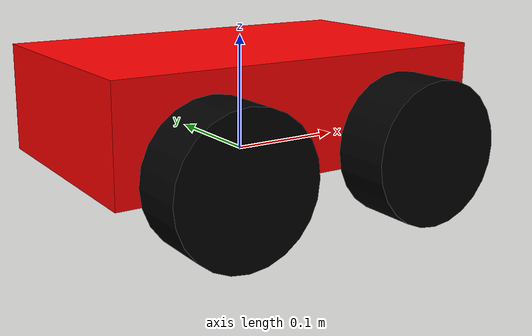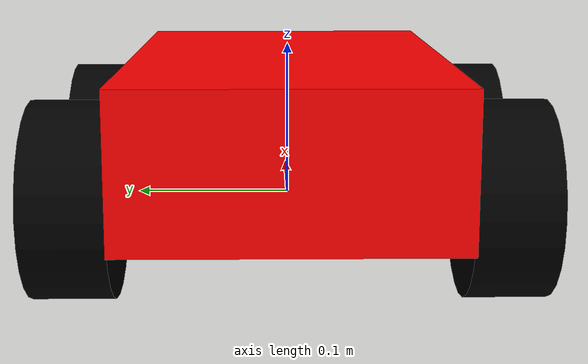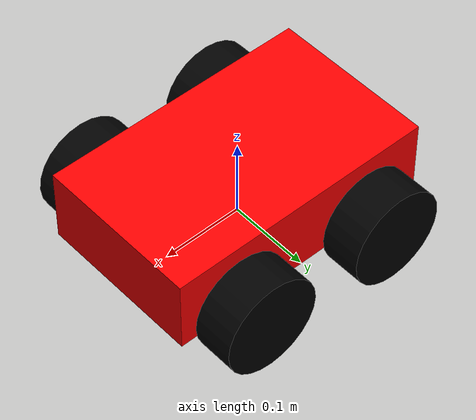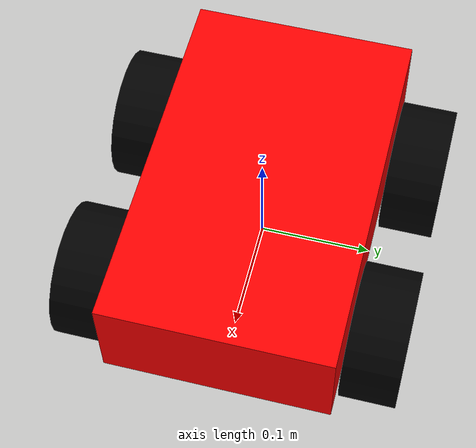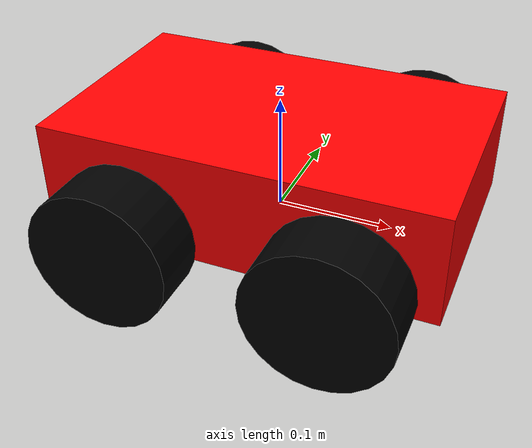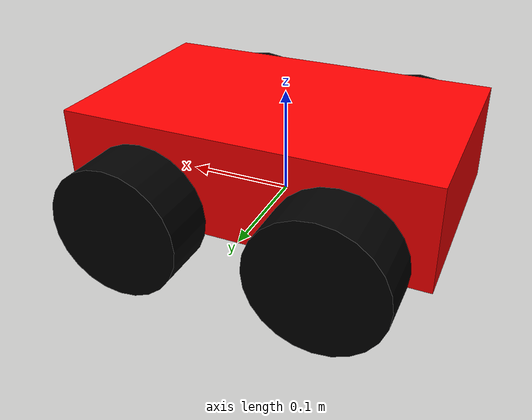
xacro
<?xml version="1.0"?>

<robot name="ares" xmlns:xacro="http://www.ros.org/wiki/xacro">

	<material name="red">
		<color rgba="1 0 0 1"/>
	</material>

	<material name="black">
		<color rgba="0 0 0 1"/>
	</material>

	<xacro:property name="chassisWidth" value="0.203" />
	<xacro:property name="chassisHeight" value="0.093" />
	<xacro:property name="chassisLength" value="0.333" />
	<xacro:property name="wheelRadius" value="0.06" />
	<xacro:property name="wheelWidth" value="0.05" />

	<link name="base_link">
		<visual>
			<geometry>
				<box size="${chassisLength} ${chassisWidth} ${chassisHeight}"/>
			</geometry>
			<origin rpy="0 0 0" xyz="0 0 ${chassisHeight/2}"/>
			<material name="red"/>
		</visual>
		<collision>
			<geometry>
				<box size="${chassisLength} ${chassisWidth} ${chassisHeight}"/>
			</geometry>
		</collision>
		<inertial>
			<mass value="10"/>
			<inertia ixx="0.11954" ixy="0.0" ixz="0.0" iyy="0.1521" iyz="0.0" izz="0.499"/>
		</inertial>
	</link>

	<gazebo reference="base_link">
    	<material>Gazebo/DarkGrey</material>
  	</gazebo>

	<link name="left_rear_wheel_link">
		<visual>
			<geometry>
				<cylinder length="${wheelWidth}" radius="${wheelRadius}"/>
			</geometry>
			<origin rpy="0 0 0" xyz="0 0 0"/>
			<material name="black"/>
		</visual>
		<collision>
			<geometry>
				<cylinder length="${wheelWidth}" radius="${wheelRadius}"/>
			</geometry>
		</collision>
		<inertial>
			<mass value="0.150"/>
			<inertia ixx="0.000166" ixy="0.0" ixz="0.0" iyy="0.000166" iyz="0.0" izz="0.00027"/>
		</inertial>
	</link>

	<joint name="left_rear_wheel_joint" type="continuous">
		<parent link="base_link"/>
		<child link="left_rear_wheel_link"/>
		<axis xyz="0 0 1"/>
		<origin rpy="1.57075 0 0" xyz="-0.089 0.12862 0.01575"/>
	</joint>

	<transmission name="left_rear_wheel_trans">
		<type>transmission_interface/SimpleTransmission</type>
		<actuator name="left_rear_wheel_motor">
			<mechanicalReduction>1</mechanicalReduction>
		</actuator>
		<joint name="left_rear_wheel_joint">
			<hardwareInterface>hardware_interface/VelocityJointInterface</hardwareInterface>
		</joint>
	</transmission>

	<gazebo reference="left_rear_wheel_link">
		<mu1 value="0.1"/>
		<mu2 value="0.1"/>
		<kp value="500000.0"/>
		<kd value="1.0"/>
		<material>Gazebo/Grey</material>
	</gazebo>

	<link name="left_front_wheel_link">
		<visual>
			<geometry>
				<cylinder length="${wheelWidth}" radius="${wheelRadius}"/>
			</geometry>
			<origin rpy="0 0 0" xyz="0 0 0"/>
			<material name="black"/>
		</visual>
		<collision>
			<geometry>
				<cylinder length="${wheelWidth}" radius="${wheelRadius}"/>
			</geometry>
		</collision>
		<inertial>
			<mass value="0.150"/>
			<inertia ixx="0.000166" ixy="0.0" ixz="0.0" iyy="0.000166" iyz="0.0" izz="0.00027"/>
		</inertial>
	</link>

	<joint name="left_front_wheel_joint" type="continuous">
		<parent link="base_link"/>
		<child link="left_front_wheel_link"/>
		<axis xyz="0 0 1"/>
		<origin rpy="1.57075 0 0" xyz="0.089 0.12862 0.01575"/>
	</joint>

	<transmission name="left_front_wheel_trans">
		<type>transmission_interface/SimpleTransmission</type>
		<actuator name="left_front_wheel_motor">
			<mechanicalReduction>1</mechanicalReduction>
		</actuator>
		<joint name="left_front_wheel_joint">
			<hardwareInterface>hardware_interface/VelocityJointInterface</hardwareInterface>
		</joint>
	</transmission>

	<gazebo reference="left_front_wheel_link">
		<mu1 value="0.1"/>
		<mu2 value="0.1"/>
		<kp value="500000.0"/>
		<kd value="1.0"/>
		<material>Gazebo/Grey</material>
	</gazebo>

	<link name="right_rear_wheel_link">
		<visual>
			<geometry>
				<cylinder length="${wheelWidth}" radius="${wheelRadius}"/>
			</geometry>
			<origin rpy="0 0 0" xyz="0 0 0"/>
			<material name="black"/>
		</visual>
		<collision>
			<geometry>
				<cylinder length="${wheelWidth}" radius="${wheelRadius}"/>
			</geometry>
		</collision>
		<inertial>
			<mass value="0.150"/>
			<inertia ixx="0.000166" ixy="0.0" ixz="0.0" iyy="0.000166" iyz="0.0" izz="0.00027"/>
		</inertial>
	</link>

	<joint name="right_rear_wheel_joint" type="continuous">
		<parent link="base_link"/>
		<child link="right_rear_wheel_link"/>
		<axis xyz="0 0 1"/>
		<origin rpy="1.57075 0 0" xyz="-0.089 -0.12862 0.01575"/>
	</joint>

	<transmission name="right_rear_wheel_trans">
		<type>transmission_interface/SimpleTransmission</type>
		<actuator name="right_rear_wheel_motor">
			<mechanicalReduction>1</mechanicalReduction>
		</actuator>
		<joint name="right_rear_wheel_joint">
			<hardwareInterface>hardware_interface/VelocityJointInterface</hardwareInterface>
		</joint>
	</transmission>

	<gazebo reference="right_rear_wheel_link">
		<mu1 value="0.1"/>
		<mu2 value="0.1"/>
		<kp value="500000.0"/>
		<kd value="1.0"/>
		<material>Gazebo/Grey</material>
	</gazebo>

	<link name="right_front_wheel_link">
		<visual>
			<geometry>
				<cylinder length="${wheelWidth}" radius="${wheelRadius}"/>
			</geometry>
			<origin rpy="0 0 0" xyz="0 0 0"/>
			<material name="black"/>
		</visual>
		<collision>
			<geometry>
				<cylinder length="${wheelWidth}" radius="${wheelRadius}"/>
			</geometry>
		</collision>
		<inertial>
			<mass value="0.150"/>
			<inertia ixx="0.000166" ixy="0.0" ixz="0.0" iyy="0.000166" iyz="0.0" izz="0.00027"/>
		</inertial>
	</link>

	<joint name="right_front_wheel_joint" type="continuous">
		<parent link="base_link"/>
		<child link="right_front_wheel_link"/>
		<axis xyz="0 0 1"/>
		<origin rpy="1.57075 0 0" xyz="0.089 -0.12862 0.01575"/>
	</joint>

	<transmission name="right_front_wheel_trans">
		<type>transmission_interface/SimpleTransmission</type>
		<actuator name="right_front_wheel_motor">
			<mechanicalReduction>1</mechanicalReduction>
		</actuator>
		<joint name="right_front_wheel_joint">
			<hardwareInterface>hardware_interface/VelocityJointInterface</hardwareInterface>
		</joint>
	</transmission>

	<gazebo reference="right_front_wheel_link">
		<mu1 value="0.1"/>
		<mu2 value="0.1"/>
		<kp value="500000.0"/>
		<kd value="1.0"/>
		<material>Gazebo/Grey</material>
	</gazebo>

  	<gazebo>
		<plugin name="gazebo_ros_control" filename="libgazebo_ros_control.so">
			<robotnamespace>/</robotnamespace>
		</plugin>
	</gazebo>

</robot>
